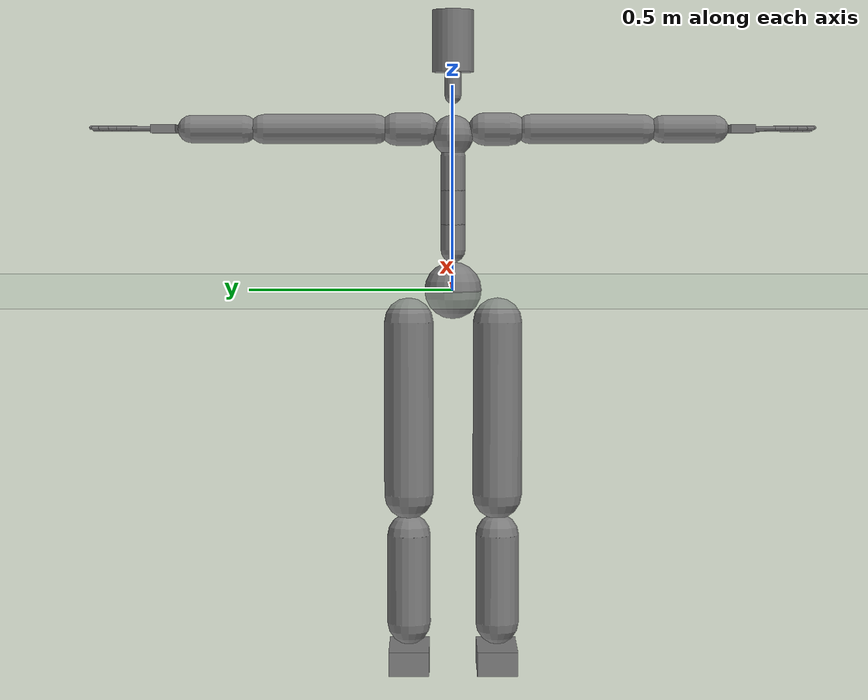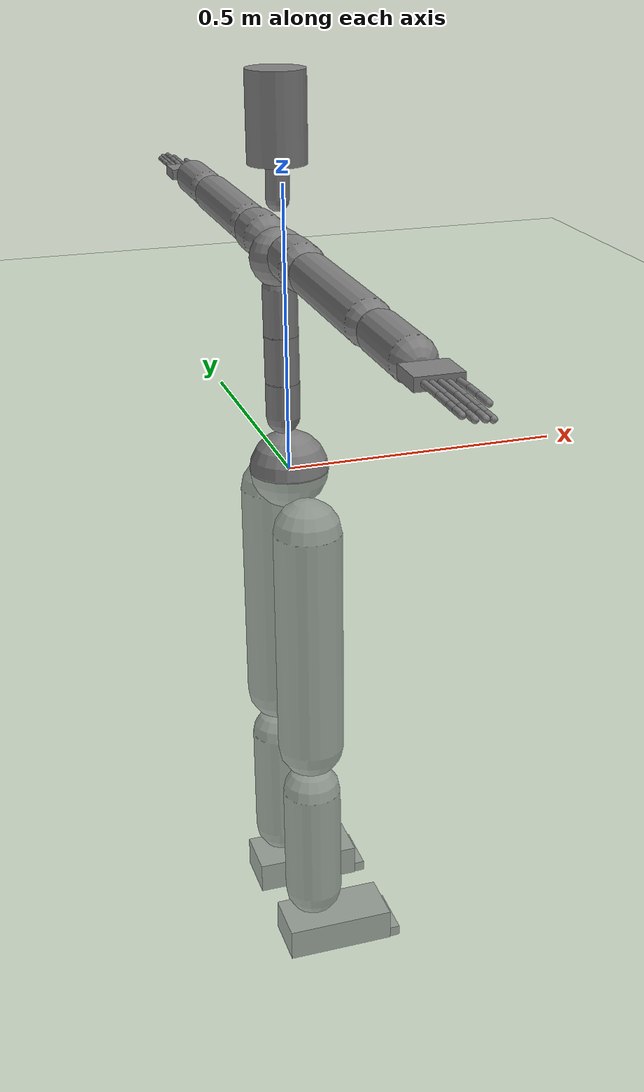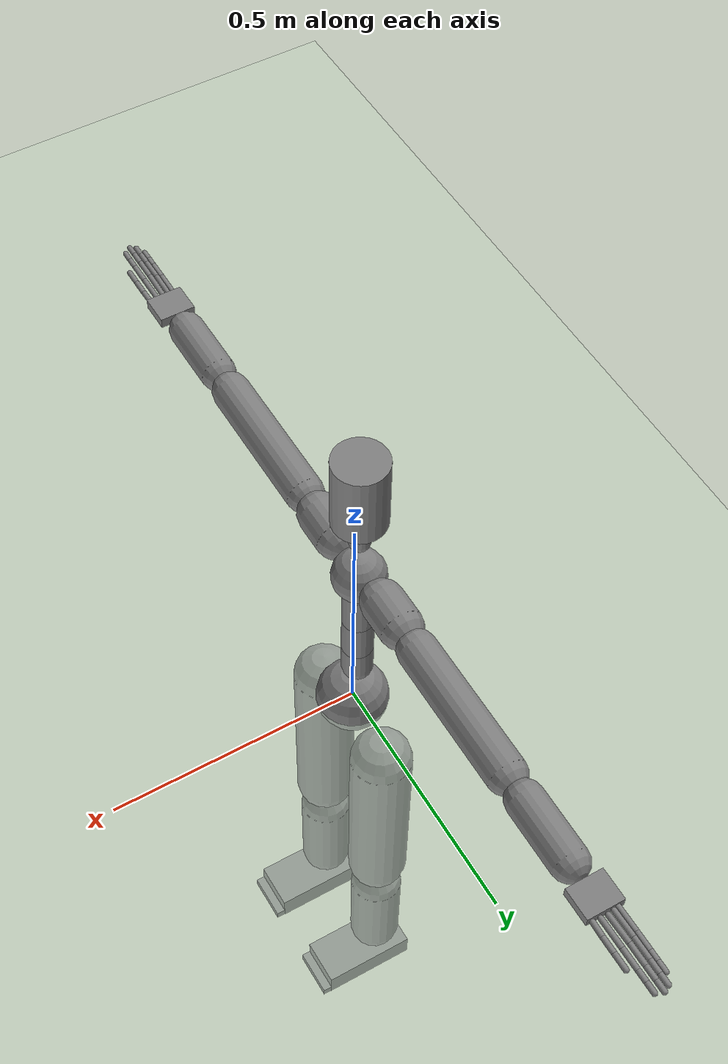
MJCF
<!-- change the damping from 50 to 500 -->
<mujoco model="humanoid">
  <compiler coordinate="local"/>
  <statistic extent="2" center="0 0 1"/>
  <option timestep="0.00555"/>
  <default>
    <motor ctrlrange="-1 1" ctrllimited="true"/>
    <geom type="capsule" condim="1" friction="1.0 0.05 0.05" solimp=".9 .99 .003" solref=".015 1"/>
    <joint type="hinge" damping="0.1" stiffness="5" armature=".007" limited="true" solimplimit="0 .99 .01"/>
    <site size=".04" group="3"/>
    <default class="force-torque">
      <site type="box" size=".01 .01 .02" rgba="1 0 0 1"/>
    </default>
    <default class="touch">
      <site type="capsule" rgba="0 0 1 .3"/>
    </default>
  </default>
  <asset>
    <texture type="skybox" builtin="gradient" rgb1=".4 .5 .6" rgb2="0 0 0" width="100" height="100"/>
    <texture builtin="flat" height="1278" mark="cross" markrgb="1 1 1" name="texgeom" random="0.01" rgb1="0.8 0.6 0.4" rgb2="0.8 0.6 0.4" type="cube" width="127"/>
    <texture builtin="checker" height="100" name="texplane" rgb1="0 0 0" rgb2="0.8 0.8 0.8" type="2d" width="100"/>
    <material name="MatPlane" reflectance="0.5" shininess="1" specular="1" texrepeat="60 60" texture="texplane"/>
    <material name="geom" texture="texgeom" texuniform="true"/>
  </asset>
  <worldbody>
    <light cutoff="100" diffuse="1 1 1" dir="-0 0 -1.3" directional="true" exponent="1" pos="0 0 1.3" specular=".1 .1 .1"/>
    <geom conaffinity="1" condim="3" name="floor" pos="0 0 0" rgba="0.8 0.9 0.8 1" size="100 100 .2" type="plane" material="MatPlane"/>
    <body name="pHipOrigin" pos="0 0 0">
      <freejoint name="pHipOrigin"/>
      <geom type="sphere" contype="1" conaffinity="1" density="4629.6296296296305" size="0.07011" pos="0.0000 0.0000 -0.0000"/>
      <body name="jL5S1" pos="-0.008709860573821766 0.0 0.0783885241439433">
        <geom type="capsule" contype="1" conaffinity="1" density="1000" fromto="0 0 0.02 0.0 0.0 0.08276130259037018" size="0.03"/>
        <joint name="jL5S1_x" type="hinge" pos="0 0 0" axis="1 0 0" stiffness="500" damping="500" armature="0.02" range="-180.0000 180.0000"/>
        <joint name="jL5S1_y" type="hinge" pos="0 0 0" axis="0 1 0" stiffness="500" damping="500" armature="0.02" range="-180.0000 180.0000"/>
        <joint name="jL5S1_z" type="hinge" pos="0 0 0" axis="0 0 1" stiffness="500" damping="500" armature="0.02" range="-180.0000 180.0000"/>
        <body name="jL4L3" pos="0.0 0.0 0.08276130259037018">
          <geom type="capsule" contype="1" conaffinity="1" density="1000" fromto="0 0 0 -0.0006456212371647017 0.0 0.08368395794941075" size="0.03"/>
          <joint name="jL4L3_x" type="hinge" pos="0 0 0" axis="1 0 0" stiffness="500" damping="500" armature="0.02" range="-180.0000 180.0000"/>
          <joint name="jL4L3_y" type="hinge" pos="0 0 0" axis="0 1 0" stiffness="500" damping="500" armature="0.02" range="-180.0000 180.0000"/>
          <joint name="jL4L3_z" type="hinge" pos="0 0 0" axis="0 0 1" stiffness="500" damping="500" armature="0.02" range="-180.0000 180.0000"/>
          <body name="jL1T12" pos="-0.0006456212371647017 0.0 0.08368395794941075">
            <geom type="capsule" contype="1" conaffinity="1" density="1000" fromto="0 0 0 -0.0006469620236626302 0.0 0.08369474167541187" size="0.03"/>
            <joint name="jL1T12_x" type="hinge" pos="0 0 0" axis="1 0 0" stiffness="500" damping="500" armature="0.02" range="-180.0000 180.0000"/>
            <joint name="jL1T12_y" type="hinge" pos="0 0 0" axis="0 1 0" stiffness="500" damping="500" armature="0.02" range="-180.0000 180.0000"/>
            <joint name="jL1T12_z" type="hinge" pos="0 0 0" axis="0 0 1" stiffness="500" damping="500" armature="0.02" range="-180.0000 180.0000"/>
            <body name="jT9T8" pos="-0.0006469620236626302 0.0 0.08369474167541187">
              <geom type="sphere" contype="1" conaffinity="1" density="1000" size="0.05011" pos="0.0000 0.0000 0.050000"/>
              <joint name="jT9T8_x" type="hinge" pos="0 0 0" axis="1 0 0" stiffness="500" damping="500" armature="0.02" range="-180.0000 180.0000"/>
              <joint name="jT9T8_y" type="hinge" pos="0 0 0" axis="0 1 0" stiffness="500" damping="500" armature="0.02" range="-180.0000 180.0000"/>
              <joint name="jT9T8_z" type="hinge" pos="0 0 0" axis="0 0 1" stiffness="500" damping="500" armature="0.02" range="-180.0000 180.0000"/>
              <body name="jT1C7" pos="0.0 0.0 0.1163409948348999">
                <geom type="capsule" contype="1" conaffinity="1" density="1000" fromto="0 0 0.03 0.001032401699535395 0.0 0.08750932388946533" size="0.02"/>
                <joint name="jT1C7_x" type="hinge" pos="0 0 0" axis="1 0 0" stiffness="500" damping="500" armature="0.02" range="-180.0000 180.0000"/>
                <joint name="jT1C7_y" type="hinge" pos="0 0 0" axis="0 1 0" stiffness="500" damping="500" armature="0.02" range="-180.0000 180.0000"/>
                <joint name="jT1C7_z" type="hinge" pos="0 0 0" axis="0 0 1" stiffness="500" damping="500" armature="0.02" range="-180.0000 180.0000"/>
                <body name="jC1Head" pos="0.001032401699535395 0.0 0.08750932388946533">
                  <geom type="cylinder" contype="1" conaffinity="1" density="1000" fromto="0 0 0 0 0 0.15" size="0.05"/>
                  <joint name="jC1Head_x" type="hinge" pos="0 0 0" axis="1 0 0" stiffness="500" damping="500" armature="0.02" range="-180.0000 180.0000"/>
                  <joint name="jC1Head_y" type="hinge" pos="0 0 0" axis="0 1 0" stiffness="500" damping="500" armature="0.02" range="-180.0000 180.0000"/>
                  <joint name="jC1Head_z" type="hinge" pos="0 0 0" axis="0 0 1" stiffness="500" damping="500" armature="0.02" range="-180.0000 180.0000"/>
                </body>
              </body>
              <body name="jRightT4Shoulder" pos="0.0 -0.026939059804933767 0.06568334045030122">
                <geom type="capsule" contype="1" conaffinity="1" density="1000" fromto="0 -0.05 0 0.0 -0.11150375753641129 0.0" size="0.04"/>
                <joint name="jRightT4Shoulder_x" type="hinge" pos="0 0 0" axis="1 0 0" stiffness="500" damping="500" armature="0.02" range="-180.0000 180.0000"/>
                <joint name="jRightT4Shoulder_y" type="hinge" pos="0 0 0" axis="0 1 0" stiffness="500" damping="500" armature="0.02" range="-180.0000 180.0000"/>
                <joint name="jRightT4Shoulder_z" type="hinge" pos="0 0 0" axis="0 0 1" stiffness="500" damping="500" armature="0.02" range="-180.0000 180.0000"/>
                <body name="jRightShoulder" pos="0.0 -0.11150375753641129 0.0">
                  <geom type="capsule" contype="1" conaffinity="1" density="1000" fromto="0 -0.05 0 0.0 -0.32442185282707214 0.0" size="0.036"/>
                  <joint name="jRightShoulder_x" type="hinge" pos="0 0 0" axis="1 0 0" stiffness="500" damping="500" armature="0.02" range="-180.0000 180.0000"/>
                  <joint name="jRightShoulder_y" type="hinge" pos="0 0 0" axis="0 1 0" stiffness="500" damping="500" armature="0.02" range="-180.0000 180.0000"/>
                  <joint name="jRightShoulder_z" type="hinge" pos="0 0 0" axis="0 0 1" stiffness="500" damping="500" armature="0.02" range="-180.0000 180.0000"/>
                  <body name="jRightElbow" pos="0.0 -0.32442185282707214 0.0">
                    <geom type="capsule" contype="1" conaffinity="1" density="1000" fromto="0 -0.05 0 9.744088856141557e-05 -0.17610082615857964 0.0" size="0.034"/>
                    <joint name="jRightElbow_x" type="hinge" pos="0 0 0" axis="1 0 0" stiffness="500" damping="500" armature="0.02" range="-180.0000 180.0000"/>
                    <joint name="jRightElbow_y" type="hinge" pos="0 0 0" axis="0 1 0" stiffness="500" damping="500" armature="0.02" range="-180.0000 180.0000"/>
                    <joint name="jRightElbow_z" type="hinge" pos="0 0 0" axis="0 0 1" stiffness="500" damping="500" armature="0.02" range="-180.0000 180.0000"/>
                    <body name="jRightWrist" pos="9.744088856141557e-05 -0.24210082615857964 0.0">
                      <geom density="1000" type="box" pos="0 0 0" size="0.035 0.03 0.01" quat="1.0 0 0 0"/>
                      <joint name="jRightWrist_x" type="hinge" pos="0 0 0" axis="1 0 0" stiffness="500" damping="500" armature="0.02" range="-180.0000 180.0000"/>
                      <joint name="jRightWrist_y" type="hinge" pos="0 0 0" axis="0 1 0" stiffness="500" damping="500" armature="0.02" range="-180.0000 180.0000"/>
                      <joint name="jRightWrist_z" type="hinge" pos="0 0 0" axis="0 0 1" stiffness="500" damping="500" armature="0.02" range="-180.0000 180.0000"/>
                      <body name="jRightFirstCMC" pos="0.026003238 -0.024925562 -0.0011775857">
                        <geom type="capsule" contype="1" conaffinity="1" density="1000" fromto="0 0 0 0.0012266363482922316 -0.034614868462085724 0.0007314098766073585" size="0.005"/>
                        <joint name="jRightFirstCMC_x" type="hinge" pos="0 0 0" axis="1 0 0" stiffness="500" damping="500" armature="0.02" range="-180.0000 180.0000"/>
                        <joint name="jRightFirstCMC_y" type="hinge" pos="0 0 0" axis="0 1 0" stiffness="500" damping="500" armature="0.02" range="-180.0000 180.0000"/>
                        <joint name="jRightFirstCMC_z" type="hinge" pos="0 0 0" axis="0 0 1" stiffness="500" damping="500" armature="0.02" range="-180.0000 180.0000"/>
                        <body name="jRightFirstMCP" pos="0.0012266363 -0.03461487 0.0007314099">
                          <geom type="capsule" contype="1" conaffinity="1" density="1000" fromto="0 0 0 0.0 -0.03040451556444168 0.0" size="0.005"/>
                          <joint name="jRightFirstMCP_x" type="hinge" pos="0 0 0" axis="1 0 0" stiffness="500" damping="500" armature="0.02" range="-180.0000 180.0000"/>
                          <joint name="jRightFirstMCP_y" type="hinge" pos="0 0 0" axis="0 1 0" stiffness="500" damping="500" armature="0.02" range="-180.0000 180.0000"/>
                          <joint name="jRightFirstMCP_z" type="hinge" pos="0 0 0" axis="0 0 1" stiffness="500" damping="500" armature="0.02" range="-180.0000 180.0000"/>
                          <body name="jRightIP" pos="0.0 -0.030404516 0.0">
                            <geom type="capsule" contype="1" conaffinity="1" density="1000" fromto="0 0 0 0.0 -0.030366025865077972 0.0" size="0.005"/>
                            <joint name="jRightIP_x" type="hinge" pos="0 0 0" axis="1 0 0" stiffness="500" damping="500" armature="0.02" range="-180.0000 180.0000"/>
                            <joint name="jRightIP_y" type="hinge" pos="0 0 0" axis="0 1 0" stiffness="500" damping="500" armature="0.02" range="-180.0000 180.0000"/>
                            <joint name="jRightIP_z" type="hinge" pos="0 0 0" axis="0 0 1" stiffness="500" damping="500" armature="0.02" range="-180.0000 180.0000"/>
                          </body>
                        </body>
                      </body>
                      <body name="jRightSecondCMC" pos="0.011506746 -0.03361907 -0.0005863982">
                        <geom type="capsule" contype="1" conaffinity="1" density="1000" fromto="0 0 0 -0.00035076052881777287 -0.055943675339221954 -0.0005803212989121675" size="0.005"/>
                        <joint name="jRightSecondCMC_x" type="hinge" pos="0 0 0" axis="1 0 0" stiffness="500" damping="500" armature="0.02" range="-180.0000 180.0000"/>
                        <joint name="jRightSecondCMC_y" type="hinge" pos="0 0 0" axis="0 1 0" stiffness="500" damping="500" armature="0.02" range="-180.0000 180.0000"/>
                        <joint name="jRightSecondCMC_z" type="hinge" pos="0 0 0" axis="0 0 1" stiffness="500" damping="500" armature="0.02" range="-180.0000 180.0000"/>
                        <body name="jRightSecondMCP" pos="-0.00035076053 -0.055943675 -0.0005803213">
                          <geom type="capsule" contype="1" conaffinity="1" density="1000" fromto="0 0 0 0.0 -0.04001878201961517 0.0" size="0.005"/>
                          <joint name="jRightSecondMCP_x" type="hinge" pos="0 0 0" axis="1 0 0" stiffness="500" damping="500" armature="0.02" range="-180.0000 180.0000"/>
                          <joint name="jRightSecondMCP_y" type="hinge" pos="0 0 0" axis="0 1 0" stiffness="500" damping="500" armature="0.02" range="-180.0000 180.0000"/>
                          <joint name="jRightSecondMCP_z" type="hinge" pos="0 0 0" axis="0 0 1" stiffness="500" damping="500" armature="0.02" range="-180.0000 180.0000"/>
                          <body name="jRightSecondPIP" pos="0.0 -0.040018782 0.0">
                            <geom type="capsule" contype="1" conaffinity="1" density="1000" fromto="0 0 0 0.0 -0.02210843563079834 0.0" size="0.005"/>
                            <joint name="jRightSecondPIP_x" type="hinge" pos="0 0 0" axis="1 0 0" stiffness="500" damping="500" armature="0.02" range="-180.0000 180.0000"/>
                            <joint name="jRightSecondPIP_y" type="hinge" pos="0 0 0" axis="0 1 0" stiffness="500" damping="500" armature="0.02" range="-180.0000 180.0000"/>
                            <joint name="jRightSecondPIP_z" type="hinge" pos="0 0 0" axis="0 0 1" stiffness="500" damping="500" armature="0.02" range="-180.0000 180.0000"/>
                            <body name="jRightSecondDIP" pos="0.0 -0.022108436 0.0">
                              <geom type="capsule" contype="1" conaffinity="1" density="1000" fromto="0 0 0 0.0 -0.019765928387641907 0.0" size="0.005"/>
                              <joint name="jRightSecondDIP_x" type="hinge" pos="0 0 0" axis="1 0 0" stiffness="500" damping="500" armature="0.02" range="-180.0000 180.0000"/>
                              <joint name="jRightSecondDIP_y" type="hinge" pos="0 0 0" axis="0 1 0" stiffness="500" damping="500" armature="0.02" range="-180.0000 180.0000"/>
                              <joint name="jRightSecondDIP_z" type="hinge" pos="0 0 0" axis="0 0 1" stiffness="500" damping="500" armature="0.02" range="-180.0000 180.0000"/>
                            </body>
                          </body>
                        </body>
                      </body>
                      <body name="jRightThirdCMC" pos="-0.00065361214 -0.035345834 0.0014859926">
                        <geom type="capsule" contype="1" conaffinity="1" density="1000" fromto="0 0 0 -0.0006540912436321378 -0.05419156327843666 0.0014743440551683307" size="0.005"/>
                        <joint name="jRightThirdCMC_x" type="hinge" pos="0 0 0" axis="1 0 0" stiffness="500" damping="500" armature="0.02" range="-180.0000 180.0000"/>
                        <joint name="jRightThirdCMC_y" type="hinge" pos="0 0 0" axis="0 1 0" stiffness="500" damping="500" armature="0.02" range="-180.0000 180.0000"/>
                        <joint name="jRightThirdCMC_z" type="hinge" pos="0 0 0" axis="0 0 1" stiffness="500" damping="500" armature="0.02" range="-180.0000 180.0000"/>
                        <body name="jRightThirdMCP" pos="-0.00065409124 -0.054191563 0.001474344">
                          <geom type="capsule" contype="1" conaffinity="1" density="1000" fromto="0 0 0 0.0 -0.04138724505901337 0.0" size="0.005"/>
                          <joint name="jRightThirdMCP_x" type="hinge" pos="0 0 0" axis="1 0 0" stiffness="500" damping="500" armature="0.02" range="-180.0000 180.0000"/>
                          <joint name="jRightThirdMCP_y" type="hinge" pos="0 0 0" axis="0 1 0" stiffness="500" damping="500" armature="0.02" range="-180.0000 180.0000"/>
                          <joint name="jRightThirdMCP_z" type="hinge" pos="0 0 0" axis="0 0 1" stiffness="500" damping="500" armature="0.02" range="-180.0000 180.0000"/>
                          <body name="jRightThirdPIP" pos="0.0 -0.041387245 0.0">
                            <geom type="capsule" contype="1" conaffinity="1" density="1000" fromto="0 0 0 0.0 -0.026231393218040466 0.0" size="0.005"/>
                            <joint name="jRightThirdPIP_x" type="hinge" pos="0 0 0" axis="1 0 0" stiffness="500" damping="500" armature="0.02" range="-180.0000 180.0000"/>
                            <joint name="jRightThirdPIP_y" type="hinge" pos="0 0 0" axis="0 1 0" stiffness="500" damping="500" armature="0.02" range="-180.0000 180.0000"/>
                            <joint name="jRightThirdPIP_z" type="hinge" pos="0 0 0" axis="0 0 1" stiffness="500" damping="500" armature="0.02" range="-180.0000 180.0000"/>
                            <body name="jRightThirdDIP" pos="0.0 -0.026231393 0.0">
                              <geom type="capsule" contype="1" conaffinity="1" density="1000" fromto="0 0 0 0.0 -0.020833134651184082 0.0" size="0.005"/>
                              <joint name="jRightThirdDIP_x" type="hinge" pos="0 0 0" axis="1 0 0" stiffness="500" damping="500" armature="0.02" range="-180.0000 180.0000"/>
                              <joint name="jRightThirdDIP_y" type="hinge" pos="0 0 0" axis="0 1 0" stiffness="500" damping="500" armature="0.02" range="-180.0000 180.0000"/>
                              <joint name="jRightThirdDIP_z" type="hinge" pos="0 0 0" axis="0 0 1" stiffness="500" damping="500" armature="0.02" range="-180.0000 180.0000"/>
                            </body>
                          </body>
                        </body>
                      </body>
                      <body name="jRightFourthCMC" pos="-0.011980938 -0.033368893 0.00078545144">
                        <geom type="capsule" contype="1" conaffinity="1" density="1000" fromto="0 0 0 -0.00037091996637172997 -0.05083819478750229 0.0007987083517946303" size="0.005"/>
                        <joint name="jRightFourthCMC_x" type="hinge" pos="0 0 0" axis="1 0 0" stiffness="500" damping="500" armature="0.02" range="-180.0000 180.0000"/>
                        <joint name="jRightFourthCMC_y" type="hinge" pos="0 0 0" axis="0 1 0" stiffness="500" damping="500" armature="0.02" range="-180.0000 180.0000"/>
                        <joint name="jRightFourthCMC_z" type="hinge" pos="0 0 0" axis="0 0 1" stiffness="500" damping="500" armature="0.02" range="-180.0000 180.0000"/>
                        <body name="jRightFourthMCP" pos="-0.00037091997 -0.050838195 0.00079870835">
                          <geom type="capsule" contype="1" conaffinity="1" density="1000" fromto="0 0 0 0.0 -0.04179491102695465 0.0" size="0.005"/>
                          <joint name="jRightFourthMCP_x" type="hinge" pos="0 0 0" axis="1 0 0" stiffness="500" damping="500" armature="0.02" range="-180.0000 180.0000"/>
                          <joint name="jRightFourthMCP_y" type="hinge" pos="0 0 0" axis="0 1 0" stiffness="500" damping="500" armature="0.02" range="-180.0000 180.0000"/>
                          <joint name="jRightFourthMCP_z" type="hinge" pos="0 0 0" axis="0 0 1" stiffness="500" damping="500" armature="0.02" range="-180.0000 180.0000"/>
                          <body name="jRightFourthPIP" pos="0.0 -0.04179491 0.0">
                            <geom type="capsule" contype="1" conaffinity="1" density="1000" fromto="0 0 0 0.0 -0.0249565988779068 0.0" size="0.005"/>
                            <joint name="jRightFourthPIP_x" type="hinge" pos="0 0 0" axis="1 0 0" stiffness="500" damping="500" armature="0.02" range="-180.0000 180.0000"/>
                            <joint name="jRightFourthPIP_y" type="hinge" pos="0 0 0" axis="0 1 0" stiffness="500" damping="500" armature="0.02" range="-180.0000 180.0000"/>
                            <joint name="jRightFourthPIP_z" type="hinge" pos="0 0 0" axis="0 0 1" stiffness="500" damping="500" armature="0.02" range="-180.0000 180.0000"/>
                            <body name="jRightFourthDIP" pos="0.0 -0.024956599 0.0">
                              <geom type="capsule" contype="1" conaffinity="1" density="1000" fromto="0 0 0 0.0 -0.021021634340286255 0.0" size="0.005"/>
                              <joint name="jRightFourthDIP_x" type="hinge" pos="0 0 0" axis="1 0 0" stiffness="500" damping="500" armature="0.02" range="-180.0000 180.0000"/>
                              <joint name="jRightFourthDIP_y" type="hinge" pos="0 0 0" axis="0 1 0" stiffness="500" damping="500" armature="0.02" range="-180.0000 180.0000"/>
                              <joint name="jRightFourthDIP_z" type="hinge" pos="0 0 0" axis="0 0 1" stiffness="500" damping="500" armature="0.02" range="-180.0000 180.0000"/>
                            </body>
                          </body>
                        </body>
                      </body>
                      <body name="jRightFifthCMC" pos="-0.02103018 -0.029303158 0.00057805714">
                        <geom type="capsule" contype="1" conaffinity="1" density="1000" fromto="0 0 0 -7.391892722807825e-06 -0.050045501440763474 0.000688688363879919" size="0.005"/>
                        <joint name="jRightFifthCMC_x" type="hinge" pos="0 0 0" axis="1 0 0" stiffness="500" damping="500" armature="0.02" range="-180.0000 180.0000"/>
                        <joint name="jRightFifthCMC_y" type="hinge" pos="0 0 0" axis="0 1 0" stiffness="500" damping="500" armature="0.02" range="-180.0000 180.0000"/>
                        <joint name="jRightFifthCMC_z" type="hinge" pos="0 0 0" axis="0 0 1" stiffness="500" damping="500" armature="0.02" range="-180.0000 180.0000"/>
                        <body name="jRightFifthMCP" pos="-7.3918927e-06 -0.0500455 0.00068868836">
                          <geom type="capsule" contype="1" conaffinity="1" density="1000" fromto="0 0 0 0.0 -0.035121142864227295 0.0" size="0.005"/>
                          <joint name="jRightFifthMCP_x" type="hinge" pos="0 0 0" axis="1 0 0" stiffness="500" damping="500" armature="0.02" range="-180.0000 180.0000"/>
                          <joint name="jRightFifthMCP_y" type="hinge" pos="0 0 0" axis="0 1 0" stiffness="500" damping="500" armature="0.02" range="-180.0000 180.0000"/>
                          <joint name="jRightFifthMCP_z" type="hinge" pos="0 0 0" axis="0 0 1" stiffness="500" damping="500" armature="0.02" range="-180.0000 180.0000"/>
                          <body name="jRightFifthPIP" pos="0.0 -0.035121143 0.0">
                            <geom type="capsule" contype="1" conaffinity="1" density="1000" fromto="0 0 0 0.0 -0.01907883584499359 0.0" size="0.005"/>
                            <joint name="jRightFifthPIP_x" type="hinge" pos="0 0 0" axis="1 0 0" stiffness="500" damping="500" armature="0.02" range="-180.0000 180.0000"/>
                            <joint name="jRightFifthPIP_y" type="hinge" pos="0 0 0" axis="0 1 0" stiffness="500" damping="500" armature="0.02" range="-180.0000 180.0000"/>
                            <joint name="jRightFifthPIP_z" type="hinge" pos="0 0 0" axis="0 0 1" stiffness="500" damping="500" armature="0.02" range="-180.0000 180.0000"/>
                            <body name="jRightFifthDIP" pos="0.0 -0.019078836 0.0">
                              <geom type="capsule" contype="1" conaffinity="1" density="1000" fromto="0 0 0 0.0 -0.020238369703292847 0.0" size="0.005"/>
                              <joint name="jRightFifthDIP_x" type="hinge" pos="0 0 0" axis="1 0 0" stiffness="500" damping="500" armature="0.02" range="-180.0000 180.0000"/>
                              <joint name="jRightFifthDIP_y" type="hinge" pos="0 0 0" axis="0 1 0" stiffness="500" damping="500" armature="0.02" range="-180.0000 180.0000"/>
                              <joint name="jRightFifthDIP_z" type="hinge" pos="0 0 0" axis="0 0 1" stiffness="500" damping="500" armature="0.02" range="-180.0000 180.0000"/>
                            </body>
                          </body>
                        </body>
                      </body>
                    </body>
                  </body>
                </body>
              </body>
              <body name="jLeftT4Shoulder" pos="0.0 0.02686830246935362 0.06551081853617652">
                <geom type="capsule" contype="1" conaffinity="1" density="1000" fromto="0 0.05 0 0.0 0.11139681190252304 0.0" size="0.04"/>
                <joint name="jLeftT4Shoulder_x" type="hinge" pos="0 0 0" axis="1 0 0" stiffness="500" damping="500" armature="0.02" range="-180.0000 180.0000"/>
                <joint name="jLeftT4Shoulder_y" type="hinge" pos="0 0 0" axis="0 1 0" stiffness="500" damping="500" armature="0.02" range="-180.0000 180.0000"/>
                <joint name="jLeftT4Shoulder_z" type="hinge" pos="0 0 0" axis="0 0 1" stiffness="500" damping="500" armature="0.02" range="-180.0000 180.0000"/>
                <body name="jLeftShoulder" pos="0.0 0.11139681190252304 0.0">
                  <geom type="capsule" contype="1" conaffinity="1" density="1000" fromto="0 0.05 0 0.0 0.32252034544944763 0.0" size="0.036"/>
                  <joint name="jLeftShoulder_x" type="hinge" pos="0 0 0" axis="1 0 0" stiffness="500" damping="500" armature="0.02" range="-180.0000 180.0000"/>
                  <joint name="jLeftShoulder_y" type="hinge" pos="0 0 0" axis="0 1 0" stiffness="500" damping="500" armature="0.02" range="-180.0000 180.0000"/>
                  <joint name="jLeftShoulder_z" type="hinge" pos="0 0 0" axis="0 0 1" stiffness="500" damping="500" armature="0.02" range="-180.0000 180.0000"/>
                  <body name="jLeftElbow" pos="0.0 0.32252034544944763 0.0">
                    <geom type="capsule" contype="1" conaffinity="1" density="1000" fromto="0 0.05 0 9.760197347698617e-05 0.17650105640808877 0.0" size="0.034"/>
                    <joint name="jLeftElbow_x" type="hinge" pos="0 0 0" axis="1 0 0" stiffness="500" damping="500" armature="0.02" range="-180.0000 180.0000"/>
                    <joint name="jLeftElbow_y" type="hinge" pos="0 0 0" axis="0 1 0" stiffness="500" damping="500" armature="0.02" range="-180.0000 180.0000"/>
                    <joint name="jLeftElbow_z" type="hinge" pos="0 0 0" axis="0 0 1" stiffness="500" damping="500" armature="0.02" range="-180.0000 180.0000"/>
                    <body name="jLeftWrist" pos="9.760197347698617e-05 0.24250105640808878 0.0">
                      <geom density="1000" type="box" pos="0 0 0" size="0.035 0.03 0.01" quat="1.0 0 0 0"/>
                      <joint name="jLeftWrist_x" type="hinge" pos="0 0 0" axis="1 0 0" stiffness="500" damping="500" armature="0.02" range="-180.0000 180.0000"/>
                      <joint name="jLeftWrist_y" type="hinge" pos="0 0 0" axis="0 1 0" stiffness="500" damping="500" armature="0.02" range="-180.0000 180.0000"/>
                      <joint name="jLeftWrist_z" type="hinge" pos="0 0 0" axis="0 0 1" stiffness="500" damping="500" armature="0.02" range="-180.0000 180.0000"/>
                      <body name="jLeftFirstCMC" pos="0.025451044 0.02551115 -0.001139105">
                        <geom type="capsule" contype="1" conaffinity="1" density="1000" fromto="0 0 0 0.0012148203095421195 0.03461408615112305 0.0007127870921976864" size="0.005"/>
                        <joint name="jLeftFirstCMC_x" type="hinge" pos="0 0 0" axis="1 0 0" stiffness="500" damping="500" armature="0.02" range="-180.0000 180.0000"/>
                        <joint name="jLeftFirstCMC_y" type="hinge" pos="0 0 0" axis="0 1 0" stiffness="500" damping="500" armature="0.02" range="-180.0000 180.0000"/>
                        <joint name="jLeftFirstCMC_z" type="hinge" pos="0 0 0" axis="0 0 1" stiffness="500" damping="500" armature="0.02" range="-180.0000 180.0000"/>
                        <body name="jLeftFirstMCP" pos="0.0012148203 0.034614086 0.0007127871">
                          <geom type="capsule" contype="1" conaffinity="1" density="1000" fromto="0 0 0 0.0 0.03040451556444168 0.0" size="0.005"/>
                          <joint name="jLeftFirstMCP_x" type="hinge" pos="0 0 0" axis="1 0 0" stiffness="500" damping="500" armature="0.02" range="-180.0000 180.0000"/>
                          <joint name="jLeftFirstMCP_y" type="hinge" pos="0 0 0" axis="0 1 0" stiffness="500" damping="500" armature="0.02" range="-180.0000 180.0000"/>
                          <joint name="jLeftFirstMCP_z" type="hinge" pos="0 0 0" axis="0 0 1" stiffness="500" damping="500" armature="0.02" range="-180.0000 180.0000"/>
                          <body name="jLeftIP" pos="0.0 0.030404516 0.0">
                            <geom type="capsule" contype="1" conaffinity="1" density="1000" fromto="0 0 0 0.0 0.030366025865077972 0.0" size="0.005"/>
                            <joint name="jLeftIP_x" type="hinge" pos="0 0 0" axis="1 0 0" stiffness="500" damping="500" armature="0.02" range="-180.0000 180.0000"/>
                            <joint name="jLeftIP_y" type="hinge" pos="0 0 0" axis="0 1 0" stiffness="500" damping="500" armature="0.02" range="-180.0000 180.0000"/>
                            <joint name="jLeftIP_z" type="hinge" pos="0 0 0" axis="0 0 1" stiffness="500" damping="500" armature="0.02" range="-180.0000 180.0000"/>
                          </body>
                        </body>
                      </body>
                      <body name="jLeftSecondCMC" pos="0.011639284 0.033557214 -0.0005912406">
                        <geom type="capsule" contype="1" conaffinity="1" density="1000" fromto="0 0 0 -0.0003058399597648531 0.05594482272863388 -0.000587490270845592" size="0.005"/>
                        <joint name="jLeftSecondCMC_x" type="hinge" pos="0 0 0" axis="1 0 0" stiffness="500" damping="500" armature="0.02" range="-180.0000 180.0000"/>
                        <joint name="jLeftSecondCMC_y" type="hinge" pos="0 0 0" axis="0 1 0" stiffness="500" damping="500" armature="0.02" range="-180.0000 180.0000"/>
                        <joint name="jLeftSecondCMC_z" type="hinge" pos="0 0 0" axis="0 0 1" stiffness="500" damping="500" armature="0.02" range="-180.0000 180.0000"/>
                        <body name="jLeftSecondMCP" pos="-0.00030583996 0.055944823 -0.00058749027">
                          <geom type="capsule" contype="1" conaffinity="1" density="1000" fromto="0 0 0 0.0 0.04001878201961517 0.0" size="0.005"/>
                          <joint name="jLeftSecondMCP_x" type="hinge" pos="0 0 0" axis="1 0 0" stiffness="500" damping="500" armature="0.02" range="-180.0000 180.0000"/>
                          <joint name="jLeftSecondMCP_y" type="hinge" pos="0 0 0" axis="0 1 0" stiffness="500" damping="500" armature="0.02" range="-180.0000 180.0000"/>
                          <joint name="jLeftSecondMCP_z" type="hinge" pos="0 0 0" axis="0 0 1" stiffness="500" damping="500" armature="0.02" range="-180.0000 180.0000"/>
                          <body name="jLeftSecondPIP" pos="0.0 0.040018782 0.0">
                            <geom type="capsule" contype="1" conaffinity="1" density="1000" fromto="0 0 0 0.0 0.02210843563079834 0.0" size="0.005"/>
                            <joint name="jLeftSecondPIP_x" type="hinge" pos="0 0 0" axis="1 0 0" stiffness="500" damping="500" armature="0.02" range="-180.0000 180.0000"/>
                            <joint name="jLeftSecondPIP_y" type="hinge" pos="0 0 0" axis="0 1 0" stiffness="500" damping="500" armature="0.02" range="-180.0000 180.0000"/>
                            <joint name="jLeftSecondPIP_z" type="hinge" pos="0 0 0" axis="0 0 1" stiffness="500" damping="500" armature="0.02" range="-180.0000 180.0000"/>
                            <body name="jLeftSecondDIP" pos="0.0 0.022108436 0.0">
                              <geom type="capsule" contype="1" conaffinity="1" density="1000" fromto="0 0 0 0.0 0.019765928387641907 0.0" size="0.005"/>
                              <joint name="jLeftSecondDIP_x" type="hinge" pos="0 0 0" axis="1 0 0" stiffness="500" damping="500" armature="0.02" range="-180.0000 180.0000"/>
                              <joint name="jLeftSecondDIP_y" type="hinge" pos="0 0 0" axis="0 1 0" stiffness="500" damping="500" armature="0.02" range="-180.0000 180.0000"/>
                              <joint name="jLeftSecondDIP_z" type="hinge" pos="0 0 0" axis="0 0 1" stiffness="500" damping="500" armature="0.02" range="-180.0000 180.0000"/>
                            </body>
                          </body>
                        </body>
                      </body>
                      <body name="jLeftThirdCMC" pos="-0.00065744936 0.035349008 0.001436459">
                        <geom type="capsule" contype="1" conaffinity="1" density="1000" fromto="0 0 0 -0.0006593707948923111 0.05419261381030083 0.001444704132154584" size="0.005"/>
                        <joint name="jLeftThirdCMC_x" type="hinge" pos="0 0 0" axis="1 0 0" stiffness="500" damping="500" armature="0.02" range="-180.0000 180.0000"/>
                        <joint name="jLeftThirdCMC_y" type="hinge" pos="0 0 0" axis="0 1 0" stiffness="500" damping="500" armature="0.02" range="-180.0000 180.0000"/>
                        <joint name="jLeftThirdCMC_z" type="hinge" pos="0 0 0" axis="0 0 1" stiffness="500" damping="500" armature="0.02" range="-180.0000 180.0000"/>
                        <body name="jLeftThirdMCP" pos="-0.0006593708 0.054192614 0.0014447041">
                          <geom type="capsule" contype="1" conaffinity="1" density="1000" fromto="0 0 0 0.0 0.04138724505901337 0.0" size="0.005"/>
                          <joint name="jLeftThirdMCP_x" type="hinge" pos="0 0 0" axis="1 0 0" stiffness="500" damping="500" armature="0.02" range="-180.0000 180.0000"/>
                          <joint name="jLeftThirdMCP_y" type="hinge" pos="0 0 0" axis="0 1 0" stiffness="500" damping="500" armature="0.02" range="-180.0000 180.0000"/>
                          <joint name="jLeftThirdMCP_z" type="hinge" pos="0 0 0" axis="0 0 1" stiffness="500" damping="500" armature="0.02" range="-180.0000 180.0000"/>
                          <body name="jLeftThirdPIP" pos="0.0 0.041387245 0.0">
                            <geom type="capsule" contype="1" conaffinity="1" density="1000" fromto="0 0 0 0.0 0.026231393218040466 0.0" size="0.005"/>
                            <joint name="jLeftThirdPIP_x" type="hinge" pos="0 0 0" axis="1 0 0" stiffness="500" damping="500" armature="0.02" range="-180.0000 180.0000"/>
                            <joint name="jLeftThirdPIP_y" type="hinge" pos="0 0 0" axis="0 1 0" stiffness="500" damping="500" armature="0.02" range="-180.0000 180.0000"/>
                            <joint name="jLeftThirdPIP_z" type="hinge" pos="0 0 0" axis="0 0 1" stiffness="500" damping="500" armature="0.02" range="-180.0000 180.0000"/>
                            <body name="jLeftThirdDIP" pos="0.0 0.026231393 0.0">
                              <geom type="capsule" contype="1" conaffinity="1" density="1000" fromto="0 0 0 0.0 0.020833134651184082 0.0" size="0.005"/>
                              <joint name="jLeftThirdDIP_x" type="hinge" pos="0 0 0" axis="1 0 0" stiffness="500" damping="500" armature="0.02" range="-180.0000 180.0000"/>
                              <joint name="jLeftThirdDIP_y" type="hinge" pos="0 0 0" axis="0 1 0" stiffness="500" damping="500" armature="0.02" range="-180.0000 180.0000"/>
                              <joint name="jLeftThirdDIP_z" type="hinge" pos="0 0 0" axis="0 0 1" stiffness="500" damping="500" armature="0.02" range="-180.0000 180.0000"/>
                            </body>
                          </body>
                        </body>
                      </body>
                      <body name="jLeftFourthCMC" pos="-0.012420559 0.033198208 0.000838462">
                        <geom type="capsule" contype="1" conaffinity="1" density="1000" fromto="0 0 0 -0.00039889008621685207 0.05083528533577919 0.0008447259897366166" size="0.005"/>
                        <joint name="jLeftFourthCMC_x" type="hinge" pos="0 0 0" axis="1 0 0" stiffness="500" damping="500" armature="0.02" range="-180.0000 180.0000"/>
                        <joint name="jLeftFourthCMC_y" type="hinge" pos="0 0 0" axis="0 1 0" stiffness="500" damping="500" armature="0.02" range="-180.0000 180.0000"/>
                        <joint name="jLeftFourthCMC_z" type="hinge" pos="0 0 0" axis="0 0 1" stiffness="500" damping="500" armature="0.02" range="-180.0000 180.0000"/>
                        <body name="jLeftFourthMCP" pos="-0.0003988901 0.050835285 0.000844726">
                          <geom type="capsule" contype="1" conaffinity="1" density="1000" fromto="0 0 0 0.0 0.04179491102695465 0.0" size="0.005"/>
                          <joint name="jLeftFourthMCP_x" type="hinge" pos="0 0 0" axis="1 0 0" stiffness="500" damping="500" armature="0.02" range="-180.0000 180.0000"/>
                          <joint name="jLeftFourthMCP_y" type="hinge" pos="0 0 0" axis="0 1 0" stiffness="500" damping="500" armature="0.02" range="-180.0000 180.0000"/>
                          <joint name="jLeftFourthMCP_z" type="hinge" pos="0 0 0" axis="0 0 1" stiffness="500" damping="500" armature="0.02" range="-180.0000 180.0000"/>
                          <body name="jLeftFourthPIP" pos="0.0 0.04179491 0.0">
                            <geom type="capsule" contype="1" conaffinity="1" density="1000" fromto="0 0 0 0.0 0.0249565988779068 0.0" size="0.005"/>
                            <joint name="jLeftFourthPIP_x" type="hinge" pos="0 0 0" axis="1 0 0" stiffness="500" damping="500" armature="0.02" range="-180.0000 180.0000"/>
                            <joint name="jLeftFourthPIP_y" type="hinge" pos="0 0 0" axis="0 1 0" stiffness="500" damping="500" armature="0.02" range="-180.0000 180.0000"/>
                            <joint name="jLeftFourthPIP_z" type="hinge" pos="0 0 0" axis="0 0 1" stiffness="500" damping="500" armature="0.02" range="-180.0000 180.0000"/>
                            <body name="jLeftFourthDIP" pos="0.0 0.024956599 0.0">
                              <geom type="capsule" contype="1" conaffinity="1" density="1000" fromto="0 0 0 0.0 0.021021634340286255 0.0" size="0.005"/>
                              <joint name="jLeftFourthDIP_x" type="hinge" pos="0 0 0" axis="1 0 0" stiffness="500" damping="500" armature="0.02" range="-180.0000 180.0000"/>
                              <joint name="jLeftFourthDIP_y" type="hinge" pos="0 0 0" axis="0 1 0" stiffness="500" damping="500" armature="0.02" range="-180.0000 180.0000"/>
                              <joint name="jLeftFourthDIP_z" type="hinge" pos="0 0 0" axis="0 0 1" stiffness="500" damping="500" armature="0.02" range="-180.0000 180.0000"/>
                            </body>
                          </body>
                        </body>
                      </body>
                      <body name="jLeftFifthCMC" pos="-0.021667264 0.0288399 0.0005873485">
                        <geom type="capsule" contype="1" conaffinity="1" density="1000" fromto="0 0 0 -1.419272848579567e-05 0.050044137984514236 0.0007201036205515265" size="0.005"/>
                        <joint name="jLeftFifthCMC_x" type="hinge" pos="0 0 0" axis="1 0 0" stiffness="500" damping="500" armature="0.02" range="-180.0000 180.0000"/>
                        <joint name="jLeftFifthCMC_y" type="hinge" pos="0 0 0" axis="0 1 0" stiffness="500" damping="500" armature="0.02" range="-180.0000 180.0000"/>
                        <joint name="jLeftFifthCMC_z" type="hinge" pos="0 0 0" axis="0 0 1" stiffness="500" damping="500" armature="0.02" range="-180.0000 180.0000"/>
                        <body name="jLeftFifthMCP" pos="-1.41927285e-05 0.050044138 0.0007201036">
                          <geom type="capsule" contype="1" conaffinity="1" density="1000" fromto="0 0 0 0.0 0.035121142864227295 0.0" size="0.005"/>
                          <joint name="jLeftFifthMCP_x" type="hinge" pos="0 0 0" axis="1 0 0" stiffness="500" damping="500" armature="0.02" range="-180.0000 180.0000"/>
                          <joint name="jLeftFifthMCP_y" type="hinge" pos="0 0 0" axis="0 1 0" stiffness="500" damping="500" armature="0.02" range="-180.0000 180.0000"/>
                          <joint name="jLeftFifthMCP_z" type="hinge" pos="0 0 0" axis="0 0 1" stiffness="500" damping="500" armature="0.02" range="-180.0000 180.0000"/>
                          <body name="jLeftFifthPIP" pos="0.0 0.035121143 0.0">
                            <geom type="capsule" contype="1" conaffinity="1" density="1000" fromto="0 0 0 0.0 0.01907883584499359 0.0" size="0.005"/>
                            <joint name="jLeftFifthPIP_x" type="hinge" pos="0 0 0" axis="1 0 0" stiffness="500" damping="500" armature="0.02" range="-180.0000 180.0000"/>
                            <joint name="jLeftFifthPIP_y" type="hinge" pos="0 0 0" axis="0 1 0" stiffness="500" damping="500" armature="0.02" range="-180.0000 180.0000"/>
                            <joint name="jLeftFifthPIP_z" type="hinge" pos="0 0 0" axis="0 0 1" stiffness="500" damping="500" armature="0.02" range="-180.0000 180.0000"/>
                            <body name="jLeftFifthDIP" pos="0.0 0.019078836 0.0">
                              <geom type="capsule" contype="1" conaffinity="1" density="1000" fromto="0 0 0 0.0 0.020238369703292847 0.0" size="0.005"/>
                              <joint name="jLeftFifthDIP_x" type="hinge" pos="0 0 0" axis="1 0 0" stiffness="500" damping="500" armature="0.02" range="-180.0000 180.0000"/>
                              <joint name="jLeftFifthDIP_y" type="hinge" pos="0 0 0" axis="0 1 0" stiffness="500" damping="500" armature="0.02" range="-180.0000 180.0000"/>
                              <joint name="jLeftFifthDIP_z" type="hinge" pos="0 0 0" axis="0 0 1" stiffness="500" damping="500" armature="0.02" range="-180.0000 180.0000"/>
                            </body>
                          </body>
                        </body>
                      </body>
                    </body>
                  </body>
                </body>
              </body>
            </body>
          </body>
        </body>
      </body>
      <body name="jRightHip" pos="-0.00018449903092364106 -0.10949071409470336 0.0016609410850509543">
        <geom type="capsule" contype="1" conaffinity="1" density="2040.816327" fromto="0 0 -0.08 6.0488718518717093e-05 0.0 -0.5073203997663912" size="0.0605"/>
        <joint name="jRightHip_x" type="hinge" pos="0 0 0" axis="1 0 0" stiffness="500" damping="500" armature="0.02" range="-180.0000 180.0000"/>
        <joint name="jRightHip_y" type="hinge" pos="0 0 0" axis="0 1 0" stiffness="500" damping="500" armature="0.02" range="-180.0000 180.0000"/>
        <joint name="jRightHip_z" type="hinge" pos="0 0 0" axis="0 0 1" stiffness="500" damping="500" armature="0.02" range="-180.0000 180.0000"/>
        <body name="jRightKnee" pos="6.0488718518717093e-05 0.0 -0.5073203997663912">
          <geom type="capsule" contype="1" conaffinity="1" density="1234.567901" fromto="0 0 -0.1 0.0004327432464425285 0.0 -0.31924869678311707" size="0.0533"/>
          <joint name="jRightKnee_x" type="hinge" pos="0 0 0" axis="1 0 0" stiffness="500" damping="500" armature="0.02" range="-180.0000 180.0000"/>
          <joint name="jRightKnee_y" type="hinge" pos="0 0 0" axis="0 1 0" stiffness="500" damping="500" armature="0.02" range="-180.0000 180.0000"/>
          <joint name="jRightKnee_z" type="hinge" pos="0 0 0" axis="0 0 1" stiffness="500" damping="500" armature="0.02" range="-180.0000 180.0000"/>
          <body name="jRightAnkle" pos="0.0004327432464425285 0.0 -0.38324869678311707">
            <geom density="1000" type="box" pos="0.04 0 -0.03" size="0.1 0.05 0.03" quat="1.0 0 0 0"/>
            <joint name="jRightAnkle_x" type="hinge" pos="0 0 0" axis="1 0 0" stiffness="500" damping="500" armature="0.02" range="-180.0000 180.0000"/>
            <joint name="jRightAnkle_y" type="hinge" pos="0 0 0" axis="0 1 0" stiffness="500" damping="500" armature="0.02" range="-180.0000 180.0000"/>
            <joint name="jRightAnkle_z" type="hinge" pos="0 0 0" axis="0 0 1" stiffness="500" damping="500" armature="0.02" range="-180.0000 180.0000"/>
            <body name="jRightBallFoot" pos="0.14891144577221527 0.0 -0.06831477003494903">
              <geom density="1000" type="box" pos="0 0 0.02" size="0.01 0.05 0.01" quat="1.0 0 0 0"/>
              <joint name="jRightBallFoot_x" type="hinge" pos="0 0 0" axis="1 0 0" stiffness="500" damping="500" armature="0.02" range="-180.0000 180.0000"/>
              <joint name="jRightBallFoot_y" type="hinge" pos="0 0 0" axis="0 1 0" stiffness="500" damping="500" armature="0.02" range="-180.0000 180.0000"/>
              <joint name="jRightBallFoot_z" type="hinge" pos="0 0 0" axis="0 0 1" stiffness="500" damping="500" armature="0.02" range="-180.0000 180.0000"/>
            </body>
          </body>
        </body>
      </body>
      <body name="jLeftHip" pos="-0.0001811725544442815 0.10892045820984007 0.0016304364421554788">
        <geom type="capsule" contype="1" conaffinity="1" density="2040.816327" fromto="0 0 -0.08 6.0476885749449144e-05 0.0 -0.5072211580336786" size="0.0605"/>
        <joint name="jLeftHip_x" type="hinge" pos="0 0 0" axis="1 0 0" stiffness="500" damping="500" armature="0.02" range="-180.0000 180.0000"/>
        <joint name="jLeftHip_y" type="hinge" pos="0 0 0" axis="0 1 0" stiffness="500" damping="500" armature="0.02" range="-180.0000 180.0000"/>
        <joint name="jLeftHip_z" type="hinge" pos="0 0 0" axis="0 0 1" stiffness="500" damping="500" armature="0.02" range="-180.0000 180.0000"/>
        <body name="jLeftKnee" pos="6.0476885749449144e-05 0.0 -0.5072211580336786">
          <geom type="capsule" contype="1" conaffinity="1" density="1234.567901" fromto="0 0 -0.1 0.00043274331374473806 0.0 -0.3192487563877078" size="0.0533"/>
          <joint name="jLeftKnee_x" type="hinge" pos="0 0 0" axis="1 0 0" stiffness="500" damping="500" armature="0.02" range="-180.0000 180.0000"/>
          <joint name="jLeftKnee_y" type="hinge" pos="0 0 0" axis="0 1 0" stiffness="500" damping="500" armature="0.02" range="-180.0000 180.0000"/>
          <joint name="jLeftKnee_z" type="hinge" pos="0 0 0" axis="0 0 1" stiffness="500" damping="500" armature="0.02" range="-180.0000 180.0000"/>
          <body name="jLeftAnkle" pos="0.00043274331374473806 0.0 -0.3832487563877078">
            <geom density="1000" type="box" pos="0.04 0 -0.03" size="0.1 0.05 0.03" quat="1.0 0 0 0"/>
            <joint name="jLeftAnkle_x" type="hinge" pos="0 0 0" axis="1 0 0" stiffness="500" damping="500" armature="0.02" range="-180.0000 180.0000"/>
            <joint name="jLeftAnkle_y" type="hinge" pos="0 0 0" axis="0 1 0" stiffness="500" damping="500" armature="0.02" range="-180.0000 180.0000"/>
            <joint name="jLeftAnkle_z" type="hinge" pos="0 0 0" axis="0 0 1" stiffness="500" damping="500" armature="0.02" range="-180.0000 180.0000"/>
            <body name="jLeftBallFoot" pos="0.14891144577221527 0.0 -0.06831477003494903">
              <geom density="1000" type="box" pos="0 0 0.02" size="0.01 0.05 0.01" quat="1.0 0 0 0"/>
              <joint name="jLeftBallFoot_x" type="hinge" pos="0 0 0" axis="1 0 0" stiffness="500" damping="500" armature="0.02" range="-180.0000 180.0000"/>
              <joint name="jLeftBallFoot_y" type="hinge" pos="0 0 0" axis="0 1 0" stiffness="500" damping="500" armature="0.02" range="-180.0000 180.0000"/>
              <joint name="jLeftBallFoot_z" type="hinge" pos="0 0 0" axis="0 0 1" stiffness="500" damping="500" armature="0.02" range="-180.0000 180.0000"/>
            </body>
          </body>
        </body>
      </body>
    </body>
  </worldbody>
  <actuator>
    <motor name="jL5S1_x" joint="jL5S1_x" gear="500"/>
    <motor name="jL5S1_y" joint="jL5S1_y" gear="500"/>
    <motor name="jL5S1_z" joint="jL5S1_z" gear="500"/>
    <motor name="jRightHip_x" joint="jRightHip_x" gear="500"/>
    <motor name="jRightHip_y" joint="jRightHip_y" gear="500"/>
    <motor name="jRightHip_z" joint="jRightHip_z" gear="500"/>
    <motor name="jLeftHip_x" joint="jLeftHip_x" gear="500"/>
    <motor name="jLeftHip_y" joint="jLeftHip_y" gear="500"/>
    <motor name="jLeftHip_z" joint="jLeftHip_z" gear="500"/>
    <motor name="jL4L3_x" joint="jL4L3_x" gear="500"/>
    <motor name="jL4L3_y" joint="jL4L3_y" gear="500"/>
    <motor name="jL4L3_z" joint="jL4L3_z" gear="500"/>
    <motor name="jL1T12_x" joint="jL1T12_x" gear="500"/>
    <motor name="jL1T12_y" joint="jL1T12_y" gear="500"/>
    <motor name="jL1T12_z" joint="jL1T12_z" gear="500"/>
    <motor name="jT9T8_x" joint="jT9T8_x" gear="500"/>
    <motor name="jT9T8_y" joint="jT9T8_y" gear="500"/>
    <motor name="jT9T8_z" joint="jT9T8_z" gear="500"/>
    <motor name="jT1C7_x" joint="jT1C7_x" gear="500"/>
    <motor name="jT1C7_y" joint="jT1C7_y" gear="500"/>
    <motor name="jT1C7_z" joint="jT1C7_z" gear="500"/>
    <motor name="jRightT4Shoulder_x" joint="jRightT4Shoulder_x" gear="500"/>
    <motor name="jRightT4Shoulder_y" joint="jRightT4Shoulder_y" gear="500"/>
    <motor name="jRightT4Shoulder_z" joint="jRightT4Shoulder_z" gear="500"/>
    <motor name="jLeftT4Shoulder_x" joint="jLeftT4Shoulder_x" gear="500"/>
    <motor name="jLeftT4Shoulder_y" joint="jLeftT4Shoulder_y" gear="500"/>
    <motor name="jLeftT4Shoulder_z" joint="jLeftT4Shoulder_z" gear="500"/>
    <motor name="jC1Head_x" joint="jC1Head_x" gear="500"/>
    <motor name="jC1Head_y" joint="jC1Head_y" gear="500"/>
    <motor name="jC1Head_z" joint="jC1Head_z" gear="500"/>
    <motor name="jRightShoulder_x" joint="jRightShoulder_x" gear="500"/>
    <motor name="jRightShoulder_y" joint="jRightShoulder_y" gear="500"/>
    <motor name="jRightShoulder_z" joint="jRightShoulder_z" gear="500"/>
    <motor name="jRightElbow_x" joint="jRightElbow_x" gear="500"/>
    <motor name="jRightElbow_y" joint="jRightElbow_y" gear="500"/>
    <motor name="jRightElbow_z" joint="jRightElbow_z" gear="500"/>
    <motor name="jRightWrist_x" joint="jRightWrist_x" gear="500"/>
    <motor name="jRightWrist_y" joint="jRightWrist_y" gear="500"/>
    <motor name="jRightWrist_z" joint="jRightWrist_z" gear="500"/>
    <motor name="jLeftShoulder_x" joint="jLeftShoulder_x" gear="500"/>
    <motor name="jLeftShoulder_y" joint="jLeftShoulder_y" gear="500"/>
    <motor name="jLeftShoulder_z" joint="jLeftShoulder_z" gear="500"/>
    <motor name="jLeftElbow_x" joint="jLeftElbow_x" gear="500"/>
    <motor name="jLeftElbow_y" joint="jLeftElbow_y" gear="500"/>
    <motor name="jLeftElbow_z" joint="jLeftElbow_z" gear="500"/>
    <motor name="jLeftWrist_x" joint="jLeftWrist_x" gear="500"/>
    <motor name="jLeftWrist_y" joint="jLeftWrist_y" gear="500"/>
    <motor name="jLeftWrist_z" joint="jLeftWrist_z" gear="500"/>
    <motor name="jRightKnee_x" joint="jRightKnee_x" gear="500"/>
    <motor name="jRightKnee_y" joint="jRightKnee_y" gear="500"/>
    <motor name="jRightKnee_z" joint="jRightKnee_z" gear="500"/>
    <motor name="jRightAnkle_x" joint="jRightAnkle_x" gear="500"/>
    <motor name="jRightAnkle_y" joint="jRightAnkle_y" gear="500"/>
    <motor name="jRightAnkle_z" joint="jRightAnkle_z" gear="500"/>
    <motor name="jRightBallFoot_x" joint="jRightBallFoot_x" gear="500"/>
    <motor name="jRightBallFoot_y" joint="jRightBallFoot_y" gear="500"/>
    <motor name="jRightBallFoot_z" joint="jRightBallFoot_z" gear="500"/>
    <motor name="jLeftKnee_x" joint="jLeftKnee_x" gear="500"/>
    <motor name="jLeftKnee_y" joint="jLeftKnee_y" gear="500"/>
    <motor name="jLeftKnee_z" joint="jLeftKnee_z" gear="500"/>
    <motor name="jLeftAnkle_x" joint="jLeftAnkle_x" gear="500"/>
    <motor name="jLeftAnkle_y" joint="jLeftAnkle_y" gear="500"/>
    <motor name="jLeftAnkle_z" joint="jLeftAnkle_z" gear="500"/>
    <motor name="jLeftBallFoot_x" joint="jLeftBallFoot_x" gear="500"/>
    <motor name="jLeftBallFoot_y" joint="jLeftBallFoot_y" gear="500"/>
    <motor name="jLeftBallFoot_z" joint="jLeftBallFoot_z" gear="500"/>
    <motor name="jLeftFirstCMC_x" joint="jLeftFirstCMC_x" gear="500"/>
    <motor name="jLeftFirstCMC_y" joint="jLeftFirstCMC_y" gear="500"/>
    <motor name="jLeftFirstCMC_z" joint="jLeftFirstCMC_z" gear="500"/>
    <motor name="jLeftSecondCMC_x" joint="jLeftSecondCMC_x" gear="500"/>
    <motor name="jLeftSecondCMC_y" joint="jLeftSecondCMC_y" gear="500"/>
    <motor name="jLeftSecondCMC_z" joint="jLeftSecondCMC_z" gear="500"/>
    <motor name="jLeftThirdCMC_x" joint="jLeftThirdCMC_x" gear="500"/>
    <motor name="jLeftThirdCMC_y" joint="jLeftThirdCMC_y" gear="500"/>
    <motor name="jLeftThirdCMC_z" joint="jLeftThirdCMC_z" gear="500"/>
    <motor name="jLeftFourthCMC_x" joint="jLeftFourthCMC_x" gear="500"/>
    <motor name="jLeftFourthCMC_y" joint="jLeftFourthCMC_y" gear="500"/>
    <motor name="jLeftFourthCMC_z" joint="jLeftFourthCMC_z" gear="500"/>
    <motor name="jLeftFifthCMC_x" joint="jLeftFifthCMC_x" gear="500"/>
    <motor name="jLeftFifthCMC_y" joint="jLeftFifthCMC_y" gear="500"/>
    <motor name="jLeftFifthCMC_z" joint="jLeftFifthCMC_z" gear="500"/>
    <motor name="jLeftFifthMCP_x" joint="jLeftFifthMCP_x" gear="500"/>
    <motor name="jLeftFifthMCP_y" joint="jLeftFifthMCP_y" gear="500"/>
    <motor name="jLeftFifthMCP_z" joint="jLeftFifthMCP_z" gear="500"/>
    <motor name="jLeftFifthPIP_x" joint="jLeftFifthPIP_x" gear="500"/>
    <motor name="jLeftFifthPIP_y" joint="jLeftFifthPIP_y" gear="500"/>
    <motor name="jLeftFifthPIP_z" joint="jLeftFifthPIP_z" gear="500"/>
    <motor name="jLeftFifthDIP_x" joint="jLeftFifthDIP_x" gear="500"/>
    <motor name="jLeftFifthDIP_y" joint="jLeftFifthDIP_y" gear="500"/>
    <motor name="jLeftFifthDIP_z" joint="jLeftFifthDIP_z" gear="500"/>
    <motor name="jLeftFourthMCP_x" joint="jLeftFourthMCP_x" gear="500"/>
    <motor name="jLeftFourthMCP_y" joint="jLeftFourthMCP_y" gear="500"/>
    <motor name="jLeftFourthMCP_z" joint="jLeftFourthMCP_z" gear="500"/>
    <motor name="jLeftFourthPIP_x" joint="jLeftFourthPIP_x" gear="500"/>
    <motor name="jLeftFourthPIP_y" joint="jLeftFourthPIP_y" gear="500"/>
    <motor name="jLeftFourthPIP_z" joint="jLeftFourthPIP_z" gear="500"/>
    <motor name="jLeftFourthDIP_x" joint="jLeftFourthDIP_x" gear="500"/>
    <motor name="jLeftFourthDIP_y" joint="jLeftFourthDIP_y" gear="500"/>
    <motor name="jLeftFourthDIP_z" joint="jLeftFourthDIP_z" gear="500"/>
    <motor name="jLeftThirdMCP_x" joint="jLeftThirdMCP_x" gear="500"/>
    <motor name="jLeftThirdMCP_y" joint="jLeftThirdMCP_y" gear="500"/>
    <motor name="jLeftThirdMCP_z" joint="jLeftThirdMCP_z" gear="500"/>
    <motor name="jLeftThirdPIP_x" joint="jLeftThirdPIP_x" gear="500"/>
    <motor name="jLeftThirdPIP_y" joint="jLeftThirdPIP_y" gear="500"/>
    <motor name="jLeftThirdPIP_z" joint="jLeftThirdPIP_z" gear="500"/>
    <motor name="jLeftThirdDIP_x" joint="jLeftThirdDIP_x" gear="500"/>
    <motor name="jLeftThirdDIP_y" joint="jLeftThirdDIP_y" gear="500"/>
    <motor name="jLeftThirdDIP_z" joint="jLeftThirdDIP_z" gear="500"/>
    <motor name="jLeftSecondMCP_x" joint="jLeftSecondMCP_x" gear="500"/>
    <motor name="jLeftSecondMCP_y" joint="jLeftSecondMCP_y" gear="500"/>
    <motor name="jLeftSecondMCP_z" joint="jLeftSecondMCP_z" gear="500"/>
    <motor name="jLeftSecondPIP_x" joint="jLeftSecondPIP_x" gear="500"/>
    <motor name="jLeftSecondPIP_y" joint="jLeftSecondPIP_y" gear="500"/>
    <motor name="jLeftSecondPIP_z" joint="jLeftSecondPIP_z" gear="500"/>
    <motor name="jLeftSecondDIP_x" joint="jLeftSecondDIP_x" gear="500"/>
    <motor name="jLeftSecondDIP_y" joint="jLeftSecondDIP_y" gear="500"/>
    <motor name="jLeftSecondDIP_z" joint="jLeftSecondDIP_z" gear="500"/>
    <motor name="jLeftFirstMCP_x" joint="jLeftFirstMCP_x" gear="500"/>
    <motor name="jLeftFirstMCP_y" joint="jLeftFirstMCP_y" gear="500"/>
    <motor name="jLeftFirstMCP_z" joint="jLeftFirstMCP_z" gear="500"/>
    <motor name="jLeftIP_x" joint="jLeftIP_x" gear="500"/>
    <motor name="jLeftIP_y" joint="jLeftIP_y" gear="500"/>
    <motor name="jLeftIP_z" joint="jLeftIP_z" gear="500"/>
    <motor name="jRightFirstCMC_x" joint="jRightFirstCMC_x" gear="500"/>
    <motor name="jRightFirstCMC_y" joint="jRightFirstCMC_y" gear="500"/>
    <motor name="jRightFirstCMC_z" joint="jRightFirstCMC_z" gear="500"/>
    <motor name="jRightSecondCMC_x" joint="jRightSecondCMC_x" gear="500"/>
    <motor name="jRightSecondCMC_y" joint="jRightSecondCMC_y" gear="500"/>
    <motor name="jRightSecondCMC_z" joint="jRightSecondCMC_z" gear="500"/>
    <motor name="jRightThirdCMC_x" joint="jRightThirdCMC_x" gear="500"/>
    <motor name="jRightThirdCMC_y" joint="jRightThirdCMC_y" gear="500"/>
    <motor name="jRightThirdCMC_z" joint="jRightThirdCMC_z" gear="500"/>
    <motor name="jRightFourthCMC_x" joint="jRightFourthCMC_x" gear="500"/>
    <motor name="jRightFourthCMC_y" joint="jRightFourthCMC_y" gear="500"/>
    <motor name="jRightFourthCMC_z" joint="jRightFourthCMC_z" gear="500"/>
    <motor name="jRightFifthCMC_x" joint="jRightFifthCMC_x" gear="500"/>
    <motor name="jRightFifthCMC_y" joint="jRightFifthCMC_y" gear="500"/>
    <motor name="jRightFifthCMC_z" joint="jRightFifthCMC_z" gear="500"/>
    <motor name="jRightFifthMCP_x" joint="jRightFifthMCP_x" gear="500"/>
    <motor name="jRightFifthMCP_y" joint="jRightFifthMCP_y" gear="500"/>
    <motor name="jRightFifthMCP_z" joint="jRightFifthMCP_z" gear="500"/>
    <motor name="jRightFifthPIP_x" joint="jRightFifthPIP_x" gear="500"/>
    <motor name="jRightFifthPIP_y" joint="jRightFifthPIP_y" gear="500"/>
    <motor name="jRightFifthPIP_z" joint="jRightFifthPIP_z" gear="500"/>
    <motor name="jRightFifthDIP_x" joint="jRightFifthDIP_x" gear="500"/>
    <motor name="jRightFifthDIP_y" joint="jRightFifthDIP_y" gear="500"/>
    <motor name="jRightFifthDIP_z" joint="jRightFifthDIP_z" gear="500"/>
    <motor name="jRightFourthMCP_x" joint="jRightFourthMCP_x" gear="500"/>
    <motor name="jRightFourthMCP_y" joint="jRightFourthMCP_y" gear="500"/>
    <motor name="jRightFourthMCP_z" joint="jRightFourthMCP_z" gear="500"/>
    <motor name="jRightFourthPIP_x" joint="jRightFourthPIP_x" gear="500"/>
    <motor name="jRightFourthPIP_y" joint="jRightFourthPIP_y" gear="500"/>
    <motor name="jRightFourthPIP_z" joint="jRightFourthPIP_z" gear="500"/>
    <motor name="jRightFourthDIP_x" joint="jRightFourthDIP_x" gear="500"/>
    <motor name="jRightFourthDIP_y" joint="jRightFourthDIP_y" gear="500"/>
    <motor name="jRightFourthDIP_z" joint="jRightFourthDIP_z" gear="500"/>
    <motor name="jRightThirdMCP_x" joint="jRightThirdMCP_x" gear="500"/>
    <motor name="jRightThirdMCP_y" joint="jRightThirdMCP_y" gear="500"/>
    <motor name="jRightThirdMCP_z" joint="jRightThirdMCP_z" gear="500"/>
    <motor name="jRightThirdPIP_x" joint="jRightThirdPIP_x" gear="500"/>
    <motor name="jRightThirdPIP_y" joint="jRightThirdPIP_y" gear="500"/>
    <motor name="jRightThirdPIP_z" joint="jRightThirdPIP_z" gear="500"/>
    <motor name="jRightThirdDIP_x" joint="jRightThirdDIP_x" gear="500"/>
    <motor name="jRightThirdDIP_y" joint="jRightThirdDIP_y" gear="500"/>
    <motor name="jRightThirdDIP_z" joint="jRightThirdDIP_z" gear="500"/>
    <motor name="jRightSecondMCP_x" joint="jRightSecondMCP_x" gear="500"/>
    <motor name="jRightSecondMCP_y" joint="jRightSecondMCP_y" gear="500"/>
    <motor name="jRightSecondMCP_z" joint="jRightSecondMCP_z" gear="500"/>
    <motor name="jRightSecondPIP_x" joint="jRightSecondPIP_x" gear="500"/>
    <motor name="jRightSecondPIP_y" joint="jRightSecondPIP_y" gear="500"/>
    <motor name="jRightSecondPIP_z" joint="jRightSecondPIP_z" gear="500"/>
    <motor name="jRightSecondDIP_x" joint="jRightSecondDIP_x" gear="500"/>
    <motor name="jRightSecondDIP_y" joint="jRightSecondDIP_y" gear="500"/>
    <motor name="jRightSecondDIP_z" joint="jRightSecondDIP_z" gear="500"/>
    <motor name="jRightFirstMCP_x" joint="jRightFirstMCP_x" gear="500"/>
    <motor name="jRightFirstMCP_y" joint="jRightFirstMCP_y" gear="500"/>
    <motor name="jRightFirstMCP_z" joint="jRightFirstMCP_z" gear="500"/>
    <motor name="jRightIP_x" joint="jRightIP_x" gear="500"/>
    <motor name="jRightIP_y" joint="jRightIP_y" gear="500"/>
    <motor name="jRightIP_z" joint="jRightIP_z" gear="500"/>
  </actuator>
</mujoco>
